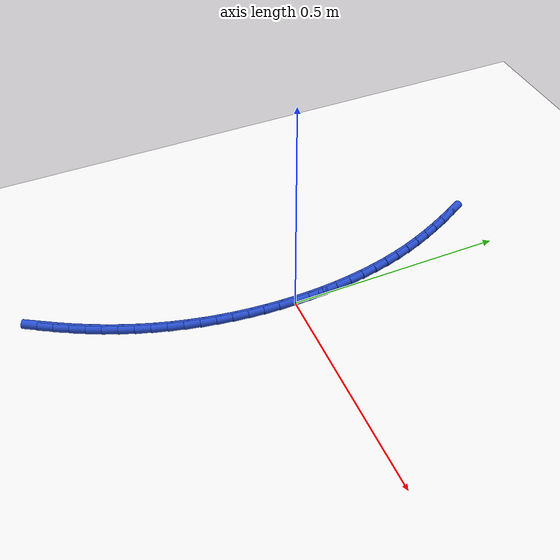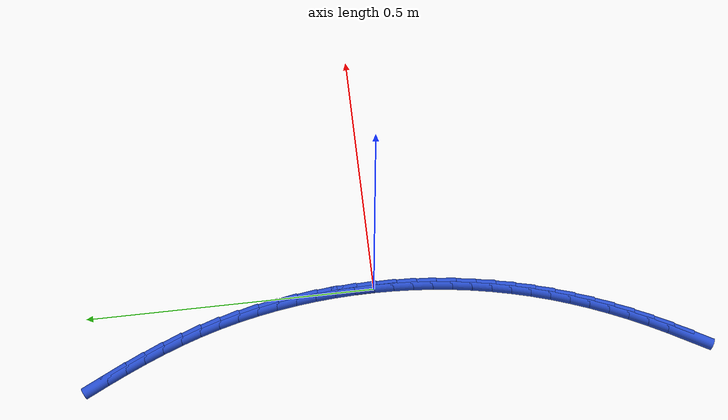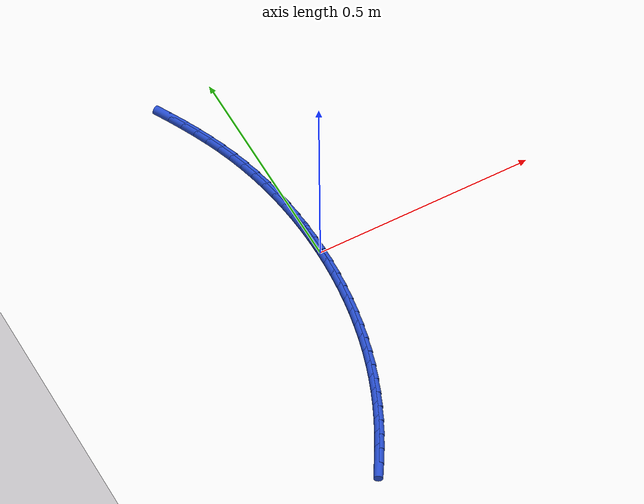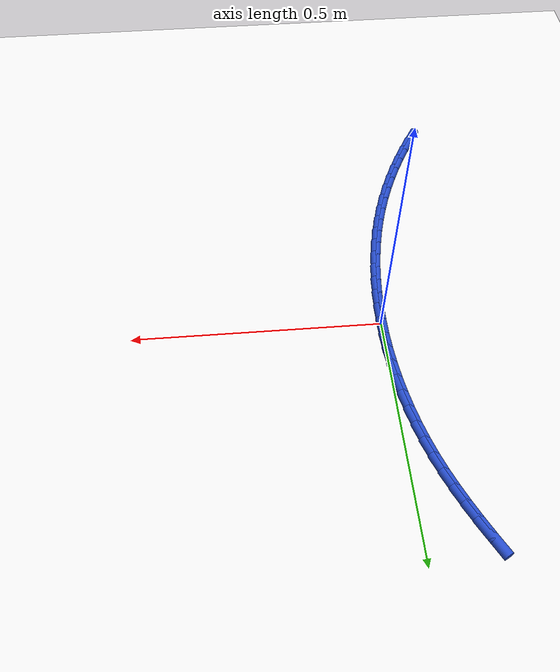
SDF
<sdf version="1.6">
 <world name="default">
  <model name="ground_plane">
   <static>1</static>
   <link name="link">
    <collision name="collision">
     <geometry><plane><normal>0 0 1</normal><size>100 100</size></plane></geometry>
     <surface><friction><ode><mu>100</mu><mu2>50</mu2></ode></friction></surface>
    </collision>
    <visual name="visual">
     <cast_shadows>0</cast_shadows>
     <geometry><plane><normal>0 0 1</normal><size>100 100</size></plane></geometry>
     <material>
      <script><uri>file://media/materials/scripts/gazebo.material</uri><name>Gazebo/WhiteGlow</name></script>
     </material>
    </visual>
   </link>
  </model>
  <model name="line">
   <link name="link_0">
    <pose>-1.5612511283791264e-17 6.938893903907228e-18 0.01 0 1.57 -1.5566706766583696</pose>
    <collision name="collision">
     <geometry><cylinder><radius>0.01</radius><length>0.08</length></cylinder></geometry>
    </collision>
    <visual name="visual">
     <material>
      <script><name>Gazebo/Blue</name><uri>file://media/materials/scripts/gazebo.material</uri></script>
     </material>
     <geometry><cylinder><radius>0.01</radius><length>0.08</length></cylinder></geometry>
    </visual>
   </link>
   <link name="link_1">
    <pose>-0.0004900673434367412 0.0346911287789064 0.01 0 1.57 -1.523045920425543</pose>
    <collision name="collision">
     <geometry><cylinder><radius>0.01</radius><length>0.08</length></cylinder></geometry>
    </collision>
    <visual name="visual">
     <material>
      <script><name>Gazebo/Blue</name><uri>file://media/materials/scripts/gazebo.material</uri></script>
     </material>
     <geometry><cylinder><radius>0.01</radius><length>0.08</length></cylinder></geometry>
    </visual>
   </link>
   <link name="link_2">
    <pose>-0.002146241075896673 0.06934873525694304 0.01 0 1.57 -1.48888646400225</pose>
    <collision name="collision">
     <geometry><cylinder><radius>0.01</radius><length>0.08</length></cylinder></geometry>
    </collision>
    <visual name="visual">
     <material>
      <script><name>Gazebo/Blue</name><uri>file://media/materials/scripts/gazebo.material</uri></script>
     </material>
     <geometry><cylinder><radius>0.01</radius><length>0.08</length></cylinder></geometry>
    </visual>
   </link>
   <link name="link_3">
    <pose>-0.004982825967281971 0.10390181827954102 0.01 0 1.57 -1.4540639703913751</pose>
    <collision name="collision">
     <geometry><cylinder><radius>0.01</radius><length>0.08</length></cylinder></geometry>
    </collision>
    <visual name="visual">
     <material>
      <script><name>Gazebo/Blue</name><uri>file://media/materials/scripts/gazebo.material</uri></script>
     </material>
     <geometry><cylinder><radius>0.01</radius><length>0.08</length></cylinder></geometry>
    </visual>
   </link>
   <link name="link_4">
    <pose>-0.009014126787494792 0.13827937669213156 0.01 0 1.57 -1.4184505879691864</pose>
    <collision name="collision">
     <geometry><cylinder><radius>0.01</radius><length>0.08</length></cylinder></geometry>
    </collision>
    <visual name="visual">
     <material>
      <script><name>Gazebo/Blue</name><uri>file://media/materials/scripts/gazebo.material</uri></script>
     </material>
     <geometry><cylinder><radius>0.01</radius><length>0.08</length></cylinder></geometry>
    </visual>
   </link>
   <link name="link_5">
    <pose>-0.014254448306437292 0.17241040934014565 0.01 0 1.57 -1.381919109163995</pose>
    <collision name="collision">
     <geometry><cylinder><radius>0.01</radius><length>0.08</length></cylinder></geometry>
    </collision>
    <visual name="visual">
     <material>
      <script><name>Gazebo/Blue</name><uri>file://media/materials/scripts/gazebo.material</uri></script>
     </material>
     <geometry><cylinder><radius>0.01</radius><length>0.08</length></cylinder></geometry>
    </visual>
   </link>
   <link name="link_6">
    <pose>-0.02071809529401163 0.2062239150690146 0.01 0 1.57 -1.3443434558938452</pose>
    <collision name="collision">
     <geometry><cylinder><radius>0.01</radius><length>0.08</length></cylinder></geometry>
    </collision>
    <visual name="visual">
     <material>
      <script><name>Gazebo/Blue</name><uri>file://media/materials/scripts/gazebo.material</uri></script>
     </material>
     <geometry><cylinder><radius>0.01</radius><length>0.08</length></cylinder></geometry>
    </visual>
   </link>
   <link name="link_7">
    <pose>-0.02841937252011996 0.23964889272416934 0.01 0 1.57 -1.3055995590511331</pose>
    <collision name="collision">
     <geometry><cylinder><radius>0.01</radius><length>0.08</length></cylinder></geometry>
    </collision>
    <visual name="visual">
     <material>
      <script><name>Gazebo/Blue</name><uri>file://media/materials/scripts/gazebo.material</uri></script>
     </material>
     <geometry><cylinder><radius>0.01</radius><length>0.08</length></cylinder></geometry>
    </visual>
   </link>
   <link name="link_8">
    <pose>-0.03737258475466444 0.27261434115104116 0.01 0 1.57 -1.265566706927805</pose>
    <collision name="collision">
     <geometry><cylinder><radius>0.01</radius><length>0.08</length></cylinder></geometry>
    </collision>
    <visual name="visual">
     <material>
      <script><name>Gazebo/Blue</name><uri>file://media/materials/scripts/gazebo.material</uri></script>
     </material>
     <geometry><cylinder><radius>0.01</radius><length>0.08</length></cylinder></geometry>
    </visual>
   </link>
   <link name="link_9">
    <pose>-0.047592036767547224 0.30504925919506104 0.01 0 1.57 -1.2247759609433497</pose>
    <collision name="collision">
     <geometry><cylinder><radius>0.01</radius><length>0.08</length></cylinder></geometry>
    </collision>
    <visual name="visual">
     <material>
      <script><name>Gazebo/Blue</name><uri>file://media/materials/scripts/gazebo.material</uri></script>
     </material>
     <geometry><cylinder><radius>0.01</radius><length>0.08</length></cylinder></geometry>
    </visual>
   </link>
   <link name="link_10">
    <pose>-0.05907532485397768 0.3369008217877752 0.01 0 1.57 -1.1870147176725165</pose>
    <collision name="collision">
     <geometry><cylinder><radius>0.01</radius><length>0.08</length></cylinder></geometry>
    </collision>
    <visual name="visual">
     <material>
      <script><name>Gazebo/Blue</name><uri>file://media/materials/scripts/gazebo.material</uri></script>
     </material>
     <geometry><cylinder><radius>0.01</radius><length>0.08</length></cylinder></geometry>
    </visual>
   </link>
   <link name="link_11">
    <pose>-0.07172290182622323 0.368221880072586 0.01 0 1.57 -1.1538654905790988</pose>
    <collision name="collision">
     <geometry><cylinder><radius>0.01</radius><length>0.08</length></cylinder></geometry>
    </collision>
    <visual name="visual">
     <material>
      <script><name>Gazebo/Blue</name><uri>file://media/materials/scripts/gazebo.material</uri></script>
     </material>
     <geometry><cylinder><radius>0.01</radius><length>0.08</length></cylinder></geometry>
    </visual>
   </link>
   <link name="link_12">
    <pose>-0.08540020388333962 0.3991033775375834 0.01 0 1.57 -1.1254984513892936</pose>
    <collision name="collision">
     <geometry><cylinder><radius>0.01</radius><length>0.08</length></cylinder></geometry>
    </collision>
    <visual name="visual">
     <material>
      <script><name>Gazebo/Blue</name><uri>file://media/materials/scripts/gazebo.material</uri></script>
     </material>
     <geometry><cylinder><radius>0.01</radius><length>0.08</length></cylinder></geometry>
    </visual>
   </link>
   <link name="link_13">
    <pose>-0.09997262039151786 0.429636308617349 0.01 0 1.57 -1.1020029698760332</pose>
    <collision name="collision">
     <geometry><cylinder><radius>0.01</radius><length>0.08</length></cylinder></geometry>
    </collision>
    <visual name="visual">
     <material>
      <script><name>Gazebo/Blue</name><uri>file://media/materials/scripts/gazebo.material</uri></script>
     </material>
     <geometry><cylinder><radius>0.01</radius><length>0.08</length></cylinder></geometry>
    </visual>
   </link>
   <link name="link_14">
    <pose>-0.11530554071694896 0.4599116677464648 0.01 0 1.57 -1.083407689069498</pose>
    <collision name="collision">
     <geometry><cylinder><radius>0.01</radius><length>0.08</length></cylinder></geometry>
    </collision>
    <visual name="visual">
     <material>
      <script><name>Gazebo/Blue</name><uri>file://media/materials/scripts/gazebo.material</uri></script>
     </material>
     <geometry><cylinder><radius>0.01</radius><length>0.08</length></cylinder></geometry>
    </visual>
   </link>
   <link name="link_184">
    <pose>-0.14821949857425984 -0.5219630013962362 0.01 0 1.57 1.0405185453694388</pose>
    <collision name="collision">
     <geometry><cylinder><radius>0.01</radius><length>0.08</length></cylinder></geometry>
    </collision>
    <visual name="visual">
     <material>
      <script><name>Gazebo/Blue</name><uri>file://media/materials/scripts/gazebo.material</uri></script>
     </material>
     <geometry><cylinder><radius>0.01</radius><length>0.08</length></cylinder></geometry>
    </visual>
   </link>
   <link name="link_185">
    <pose>-0.13072895384885502 -0.4921304300441719 0.01 0 1.57 1.0706232117717922</pose>
    <collision name="collision">
     <geometry><cylinder><radius>0.01</radius><length>0.08</length></cylinder></geometry>
    </collision>
    <visual name="visual">
     <material>
      <script><name>Gazebo/Blue</name><uri>file://media/materials/scripts/gazebo.material</uri></script>
     </material>
     <geometry><cylinder><radius>0.01</radius><length>0.08</length></cylinder></geometry>
    </visual>
   </link>
   <link name="link_186">
    <pose>-0.11422901730286868 -0.46193992209155504 0.01 0 1.57 1.1020191170507594</pose>
    <collision name="collision">
     <geometry><cylinder><radius>0.01</radius><length>0.08</length></cylinder></geometry>
    </collision>
    <visual name="visual">
     <material>
      <script><name>Gazebo/Blue</name><uri>file://media/materials/scripts/gazebo.material</uri></script>
     </material>
     <geometry><cylinder><radius>0.01</radius><length>0.08</length></cylinder></geometry>
    </visual>
   </link>
   <link name="link_187">
    <pose>-0.09874958357848206 -0.43137404291746523 0.01 0 1.57 1.1346560067465823</pose>
    <collision name="collision">
     <geometry><cylinder><radius>0.01</radius><length>0.08</length></cylinder></geometry>
    </collision>
    <visual name="visual">
     <material>
      <script><name>Gazebo/Blue</name><uri>file://media/materials/scripts/gazebo.material</uri></script>
     </material>
     <geometry><cylinder><radius>0.01</radius><length>0.08</length></cylinder></geometry>
    </visual>
   </link>
   <link name="link_188">
    <pose>-0.08432054731787642 -0.4004153579009814 0.01 0 1.57 1.1684680701626635</pose>
    <collision name="collision">
     <geometry><cylinder><radius>0.01</radius><length>0.08</length></cylinder></geometry>
    </collision>
    <visual name="visual">
     <material>
      <script><name>Gazebo/Blue</name><uri>file://media/materials/scripts/gazebo.material</uri></script>
     </material>
     <geometry><cylinder><radius>0.01</radius><length>0.08</length></cylinder></geometry>
    </visual>
   </link>
   <link name="link_189">
    <pose>-0.07097180316323286 -0.3690464324211825 0.01 0 1.57 1.2033733225791974</pose>
    <collision name="collision">
     <geometry><cylinder><radius>0.01</radius><length>0.08</length></cylinder></geometry>
    </collision>
    <visual name="visual">
     <material>
      <script><name>Gazebo/Blue</name><uri>file://media/materials/scripts/gazebo.material</uri></script>
     </material>
     <geometry><cylinder><radius>0.01</radius><length>0.08</length></cylinder></geometry>
    </visual>
   </link>
   <link name="link_190">
    <pose>-0.05873324575673265 -0.3372498318571477 0.01 0 1.57 1.2392730100359302</pose>
    <collision name="collision">
     <geometry><cylinder><radius>0.01</radius><length>0.08</length></cylinder></geometry>
    </collision>
    <visual name="visual">
     <material>
      <script><name>Gazebo/Blue</name><uri>file://media/materials/scripts/gazebo.material</uri></script>
     </material>
     <geometry><cylinder><radius>0.01</radius><length>0.08</length></cylinder></geometry>
    </visual>
   </link>
   <link name="link_191">
    <pose>-0.04763475983975834 -0.3050081416489318 0.01 0 1.57 1.2757181842566894</pose>
    <collision name="collision">
     <geometry><cylinder><radius>0.01</radius><length>0.08</length></cylinder></geometry>
    </collision>
    <visual name="visual">
     <material>
      <script><name>Gazebo/Blue</name><uri>file://media/materials/scripts/gazebo.material</uri></script>
     </material>
     <geometry><cylinder><radius>0.01</radius><length>0.08</length></cylinder></geometry>
    </visual>
   </link>
   <link name="link_192">
    <pose>-0.037698827394120345 -0.2723189466912415 0.01 0 1.57 1.3117337853915505</pose>
    <collision name="collision">
     <geometry><cylinder><radius>0.01</radius><length>0.08</length></cylinder></geometry>
    </collision>
    <visual name="visual">
     <material>
      <script><name>Gazebo/Blue</name><uri>file://media/materials/scripts/gazebo.material</uri></script>
     </material>
     <geometry><cylinder><radius>0.01</radius><length>0.08</length></cylinder></geometry>
    </visual>
   </link>
   <link name="link_193">
    <pose>-0.028927393582608183 -0.23922144353488883 0.01 0 1.57 1.3472032079515264</pose>
    <collision name="collision">
     <geometry><cylinder><radius>0.01</radius><length>0.08</length></cylinder></geometry>
    </collision>
    <visual name="visual">
     <material>
      <script><name>Gazebo/Blue</name><uri>file://media/materials/scripts/gazebo.material</uri></script>
     </material>
     <geometry><cylinder><radius>0.01</radius><length>0.08</length></cylinder></geometry>
    </visual>
   </link>
   <link name="link_194">
    <pose>-0.021318871278346436 -0.20576198584799474 0.01 0 1.57 1.3821790440000097</pose>
    <collision name="collision">
     <geometry><cylinder><radius>0.01</radius><length>0.08</length></cylinder></geometry>
    </collision>
    <visual name="visual">
     <material>
      <script><name>Gazebo/Blue</name><uri>file://media/materials/scripts/gazebo.material</uri></script>
     </material>
     <geometry><cylinder><radius>0.01</radius><length>0.08</length></cylinder></geometry>
    </visual>
   </link>
   <link name="link_195">
    <pose>-0.014871673354459509 -0.17198692729867965 0.01 0 1.57 1.4167161796788486</pose>
    <collision name="collision">
     <geometry><cylinder><radius>0.01</radius><length>0.08</length></cylinder></geometry>
    </collision>
    <visual name="visual">
     <material>
      <script><name>Gazebo/Blue</name><uri>file://media/materials/scripts/gazebo.material</uri></script>
     </material>
     <geometry><cylinder><radius>0.01</radius><length>0.08</length></cylinder></geometry>
    </visual>
   </link>
   <link name="link_196">
    <pose>-0.009584212684071752 -0.13794262155506387 0.01 0 1.57 1.450871276431493</pose>
    <collision name="collision">
     <geometry><cylinder><radius>0.01</radius><length>0.08</length></cylinder></geometry>
    </collision>
    <visual name="visual">
     <material>
      <script><name>Gazebo/Blue</name><uri>file://media/materials/scripts/gazebo.material</uri></script>
     </material>
     <geometry><cylinder><radius>0.01</radius><length>0.08</length></cylinder></geometry>
    </visual>
   </link>
   <link name="link_197">
    <pose>-0.005454902140307551 -0.10367542228526769 0.01 0 1.57 1.4847023328020548</pose>
    <collision name="collision">
     <geometry><cylinder><radius>0.01</radius><length>0.08</length></cylinder></geometry>
    </collision>
    <visual name="visual">
     <material>
      <script><name>Gazebo/Blue</name><uri>file://media/materials/scripts/gazebo.material</uri></script>
     </material>
     <geometry><cylinder><radius>0.01</radius><length>0.08</length></cylinder></geometry>
    </visual>
   </link>
   <link name="link_198">
    <pose>-0.0024821545962912784 -0.06923168315741143 0.01 0 1.57 1.5182683165510062</pose>
    <collision name="collision">
     <geometry><cylinder><radius>0.01</radius><length>0.08</length></cylinder></geometry>
    </collision>
    <visual name="visual">
     <material>
      <script><name>Gazebo/Blue</name><uri>file://media/materials/scripts/gazebo.material</uri></script>
     </material>
     <geometry><cylinder><radius>0.01</radius><length>0.08</length></cylinder></geometry>
    </visual>
   </link>
   <link name="link_199">
    <pose>-0.0006643829251473106 -0.034657757839615444 0.01 0 1.57 1.5516288560296985</pose>
    <collision name="collision">
     <geometry><cylinder><radius>0.01</radius><length>0.08</length></cylinder></geometry>
    </collision>
    <visual name="visual">
     <material>
      <script><name>Gazebo/Blue</name><uri>file://media/materials/scripts/gazebo.material</uri></script>
     </material>
     <geometry><cylinder><radius>0.01</radius><length>0.08</length></cylinder></geometry>
    </visual>
   </link>
   <link name="link_200">
    <pose>-1.9081958235744878e-17 -2.0816681711721685e-17 0.01 0 1.57 -1.5567486742015422</pose>
    <collision name="collision">
     <geometry><cylinder><radius>0.01</radius><length>0.08</length></cylinder></geometry>
    </collision>
    <visual name="visual">
     <material>
      <script><name>Gazebo/Blue</name><uri>file://media/materials/scripts/gazebo.material</uri></script>
     </material>
     <geometry><cylinder><radius>0.01</radius><length>0.08</length></cylinder></geometry>
    </visual>
   </link>
   <link name="link_201">
    <pose>-0.0004874186939738045 0.03469523669331528 0.01 0 1.57 -1.5567486742015422</pose>
    <collision name="collision">
     <geometry><cylinder><radius>0.01</radius><length>0.08</length></cylinder></geometry>
    </collision>
    <visual name="visual">
     <material>
      <script><name>Gazebo/Blue</name><uri>file://media/materials/scripts/gazebo.material</uri></script>
     </material>
     <geometry><cylinder><radius>0.01</radius><length>0.08</length></cylinder></geometry>
    </visual>
   </link>
  </model>
 </world>
</sdf>
